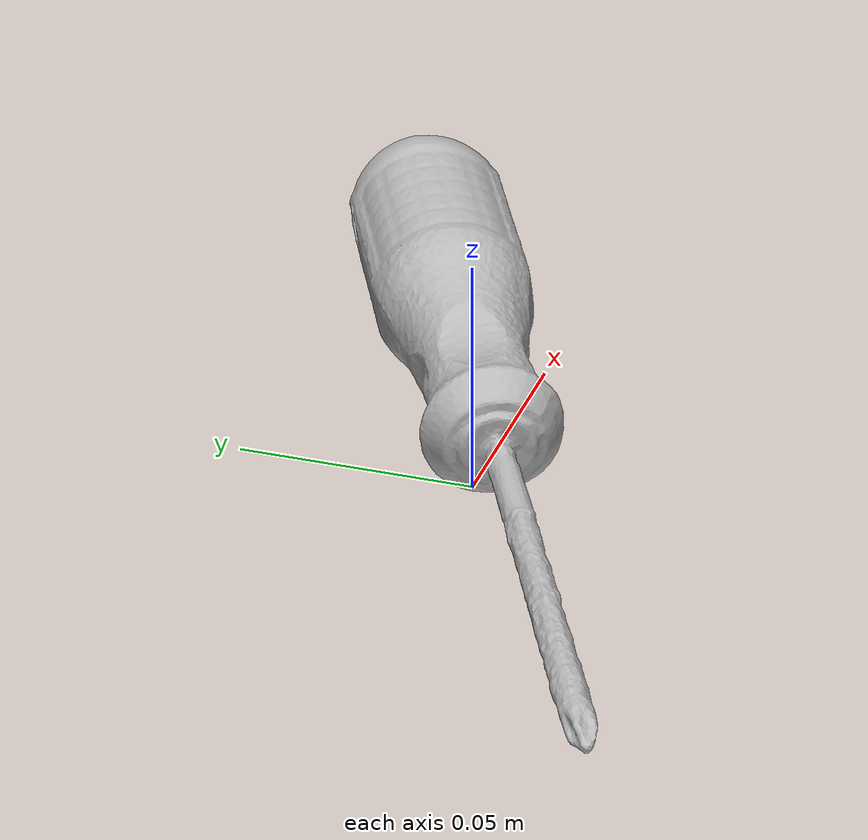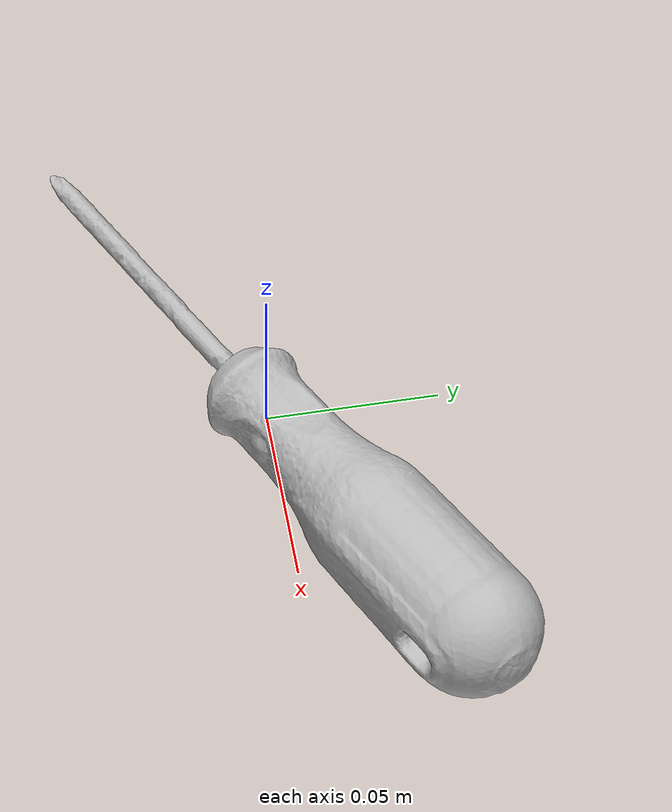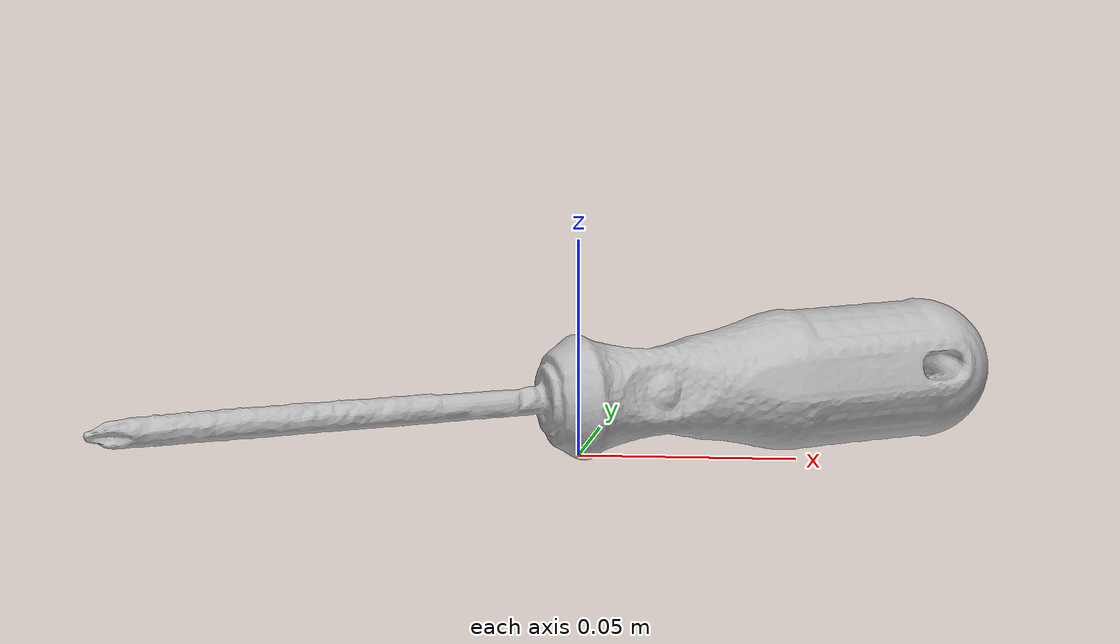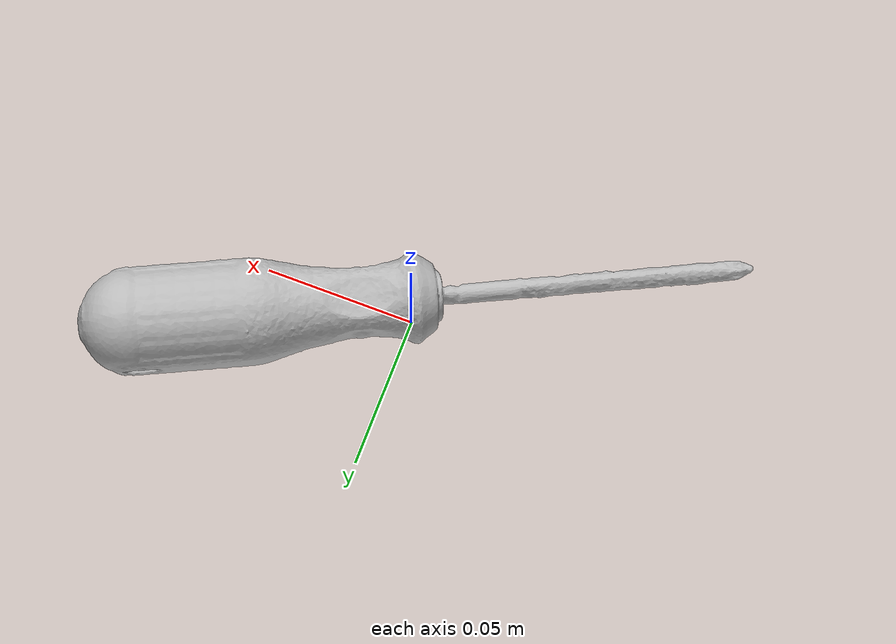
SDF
<?xml version="1.0" ?>
<sdf version='1.8'>
  <model name='ycb_043_phillips_screwdriver'>
    <link name='body'>
      <inertial>
        <mass>0.097</mass>
        <pose>0.0448816281 0.0182838696 0.0162372756 0 0 0</pose>
        <inertia>
          <ixx>3.63140479329e-05</ixx>
          <ixy>-5.04552306837e-05</ixy>
          <ixz>-4.89317331555e-06</ixz>
          <iyy>0.000111538182419</iyy>
          <iyz>-2.48523745614e-06</iyz>
          <izz>0.000136643781826</izz>
        </inertia>
      </inertial>
      <visual name='ycb_043_phillips_screwdriver_visual'>
        <pose>0.042219 -0.00394 -0.000135 0 0 0</pose>
        <geometry>
          <mesh>
            <uri>model://ycb_043_phillips_screwdriver/meshes/textured.dae</uri>
          </mesh>
        </geometry>
      </visual>
      <collision name='ycb_043_phillips_screwdriver_collision'>
        <pose>0.042219 -0.00394 -0.000135 0 0 0</pose>
        <geometry>
          <mesh>
            <uri>model://ycb_043_phillips_screwdriver/meshes/nontextured.stl</uri>
          </mesh>
        </geometry>
        <max_contacts>10</max_contacts>
        <surface>
          <contact>
            <ode>
              <kp>1e15</kp>
              <kd>1e13</kd>
            </ode>
          </contact>
        </surface>
      </collision>
    </link>
  </model>
</sdf>
